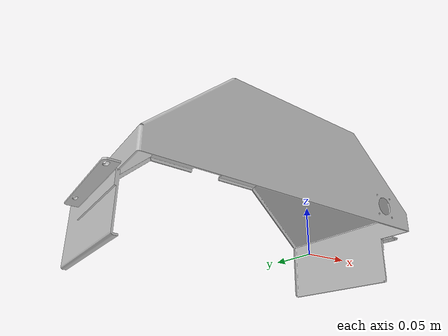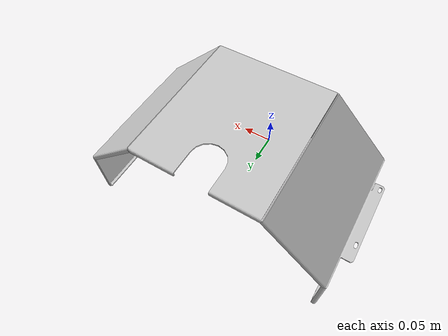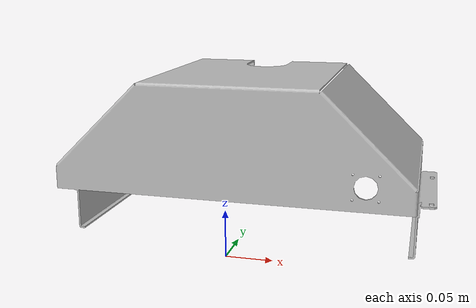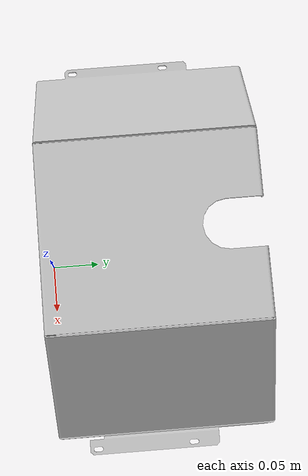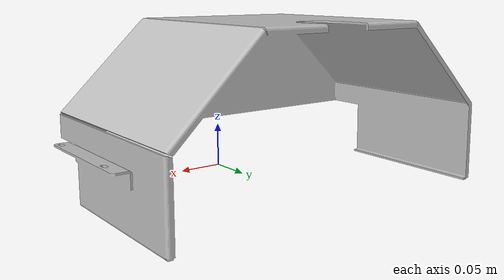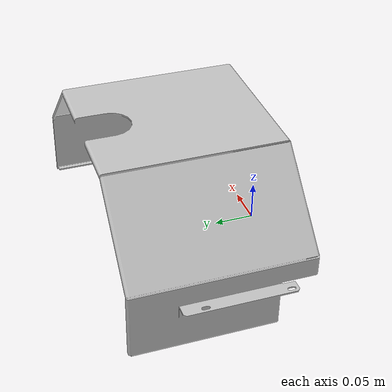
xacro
<?xml version="1.0" ?>
<robot  name="yuntai" xmlns:xacro="http://ros.org/wiki/xacro">
  <link name="cover_plate_link">
    <inertial>
      <origin xyz="-0.0003778 0.091975 0.11684" rpy="0 0 0" />
      <mass
        value="2.7829" />
      <inertia
        ixx="0.021999941366998"
        ixy="9.60264281186101E-05"
        ixz="3.31895280143294E-05"
        iyy="0.05918710440776"
        iyz="0.000587442986278965"
        izz="0.0656829127261001" />
    </inertial>
    <visual>
      <origin xyz="0 0 0" rpy="1.5707963267949 0 0" />
      <geometry>
        <mesh filename="package://bulldog_description/meshes/cover_plate.STL" />
      </geometry>
      <material name="black">
        <color rgba="0.75294 0.75294 0.75294 1" />
      </material>
    </visual>
    <collision>
      <origin xyz="0 0 0" rpy="1.5707963267949 0 0" />
      <geometry>
        <mesh filename="package://bulldog_description/meshes/cover_plate.STL" />
      </geometry>
    </collision>
  </link>
</robot>
